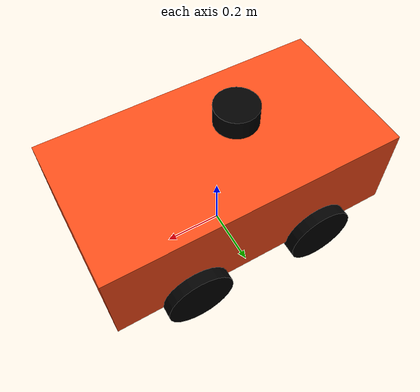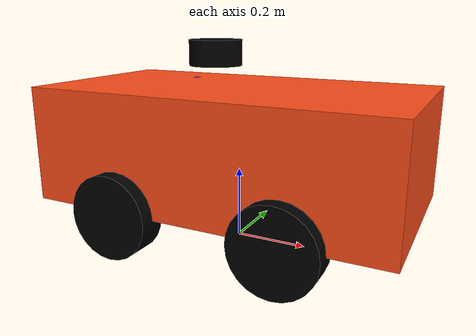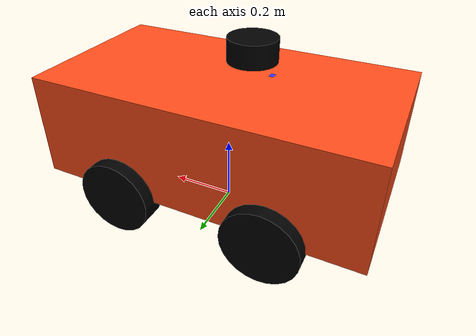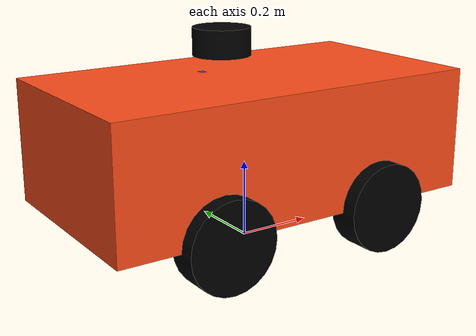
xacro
<?xml version="1.0"?>
<!-- 4 Wheel Robot with front steering and rear drive -->
<robot xmlns:xacro="http://www.ros.org/wiki/xacro" name="carlikebot_robot">
  <xacro:arg name="prefix" default="" />

  <xacro:include filename="car.urdf.xacro" />
  <xacro:include filename="car_ros2_control.xacro" />

  <xacro:include filename="lidar.urdf.xacro" />
  <xacro:include filename="imu.urdf.xacro" />

  <xacro:carlikebot prefix="$(arg prefix)" />

  <xacro:carlikebot_ros2_control name="CarlikeBot" prefix="$(arg prefix)" />

</robot>

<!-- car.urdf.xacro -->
<robot xmlns:xacro="http://www.ros.org/wiki/xacro">

    <xacro:macro name="carlikebot" params="prefix">

        <!-- Constants for robot dimensions -->
        <xacro:property name="PI" value="3.1415926535897931" />
        <xacro:property name="base_mass" value="8.0" /> <!-- arbitrary value for base mass -->
        <xacro:property name="base_length" value="1.0" />
        <xacro:property name="base_width" value="0.53" />
        <xacro:property name="base_height" value="0.32" />
        <xacro:property name="wheel_mass" value="0.1" /> <!-- arbitrary value for wheel mass -->
        <xacro:property name="wheelbase" value="0.46" />
        <xacro:property name="wheel_len" value="0.08" />
        <xacro:property name="wheel_radius" value="0.115" />

        <material name="white">
            <color rgba="1 1 1 1" />
        </material>

        <material name="orange">
            <color rgba="1 0.3 0.1 1" />
        </material>

        <material name="blue">
            <color rgba="0.2 0.2 1 1" />
        </material>

        <material name="black">
            <color rgba="0 0 0 1" />
        </material>

        <material name="red">
            <color rgba="1 0 0 1" />
        </material>

        <material name="invisible">
            <color rgba="0.0 0.0 0.0 0.0" />
        </material>

        <!-- Base Link -->
        <link name="base_link">
        </link>
        <inertial>
            <mass value="0.01" />
            <inertia ixx="1.0" ixy="0.0" ixz="0.0" iyy="1.0" iyz="0.0" izz="1.0" />
        </inertial>

        <joint name="base_joint" type="fixed">
            <parent link="base_link" />
            <child link="base_footprint" />
            <origin xyz="0 0 -0.1" />
        </joint>

        <link name="base_footprint">
        </link>
        <inertial>
            <mass value="0.01" />
            <inertia ixx="1.0" ixy="0.0" ixz="0.0" iyy="1.0" iyz="0.0" izz="1.0" />
        </inertial>

        <!-- Chassis -->

        <link name="${prefix}chassis_link">
            <collision>
                <origin xyz="0 0 0" rpy="0 0 0" />
                <geometry>
                    <box size="${base_length} ${base_width} ${base_height}" />
                </geometry>
            </collision>

            <visual>
                <origin xyz="0 0 0" rpy="0 0 0" />
                <geometry>
                    <box size="${base_length} ${base_width} ${base_height}" />
                </geometry>
                <material name="orange" />
            </visual>

            <inertial>
                <origin xyz="0 0 0" rpy="0 0 0" />
                <mass value="${base_mass}" />
                <inertia
                    ixx="0.000270" ixy="0.0" ixz="0.0"
                    iyy="0.000270" iyz="0.0"
                    izz="0.000426" />
            </inertial>
        </link>

        <joint name="${prefix}chassis_joint" type="fixed">
            <parent link="${prefix}base_link" />
            <child link="${prefix}chassis_link" />
            <origin xyz="0 0 ${base_height/2 + wheel_radius}" rpy="0 0 0" />
            <axis xyz="0 0 1" />
            <dynamics damping="0.2" />
        </joint>

        <!-- rear wheels -->

        <!-- virtual rear wheel -->

        <link name="${prefix}virtual_rear_wheel">
            <visual>
                <origin xyz="0 0 0" rpy="${PI/2} 0 ${PI/2}" />
                <geometry>
                    <cylinder length="0.01" radius="${wheel_radius}" />
                </geometry>
                <material name="blue" />
            </visual>
        </link>

        <joint name="${prefix}virtual_rear_wheel_joint" type="continuous">
            <parent link="${prefix}chassis_link" />
            <child link="${prefix}virtual_rear_wheel" />
            <origin xyz="-${wheelbase/2} 0 -${base_height/2}" rpy="0 0 ${PI/2}" />
            <axis xyz="1 0 0" />
            <limit effort="100.0" velocity="100.0" />
        </joint>

        <!-- rear right wheel -->

        <link name="${prefix}rear_right_wheel">
            <collision>
                <origin xyz="0 0 0" rpy="${PI/2} 0 ${PI/2}" />
                <geometry>
                    <cylinder length="${wheel_len}" radius="${wheel_radius}" />
                </geometry>
            </collision>

            <visual>
                <origin xyz="0 0 0" rpy="${PI/2} 0 ${PI/2}" />
                <geometry>
                    <cylinder length="${wheel_len}" radius="${wheel_radius}" />
                </geometry>
                <material name="black" />
            </visual>

            <inertial>
                <origin xyz="0 0 0" rpy="${PI/2} 0 ${PI/2}" />
                <mass value="${wheel_mass}" />
                <inertia
                    ixx="0.000270" ixy="0.0" ixz="0.0"
                    iyy="0.000270" iyz="0.0"
                    izz="0.000426" />
            </inertial>

        </link>

        <joint name="${prefix}rear_right_wheel_joint" type="continuous">
            <parent link="${prefix}chassis_link" />
            <child link="${prefix}rear_right_wheel" />
            <origin xyz="-${wheelbase/2} ${base_width/2} -${base_height/2}" rpy="0 0 ${PI/2}" />
            <axis xyz="1 0 0" />
            <limit effort="100.0" velocity="100.0" />
            <mimic joint="${prefix}virtual_rear_wheel_joint" multiplier="1.0" offset="0.0" />
        </joint>

        <!-- rear left wheel -->
        <link name="${prefix}rear_left_wheel">
            <collision>
                <origin xyz="0 0 0" rpy="${PI/2} 0 ${PI/2}" />
                <geometry>
                    <cylinder length="${wheel_len}" radius="${wheel_radius}" />
                </geometry>
            </collision>

            <visual>
                <origin xyz="0 0 0" rpy="${PI/2} 0 ${PI/2}" />
                <geometry>
                    <cylinder length="${wheel_len}" radius="${wheel_radius}" />
                </geometry>
                <material name="black" />
            </visual>

            <inertial>
                <origin xyz="0 0 0" rpy="${PI/2} 0 ${PI/2}" />
                <mass value="${wheel_mass}" />
                <inertia
                    ixx="0.000270" ixy="0.0" ixz="0.0"
                    iyy="0.000270" iyz="0.0"
                    izz="0.000426" />
            </inertial>

        </link>

        <joint name="${prefix}rear_left_wheel_joint" type="continuous">
            <parent link="${prefix}chassis_link" />
            <child link="${prefix}rear_left_wheel" />
            <origin xyz="-${wheelbase/2} -${base_width/2} -${base_height/2}" rpy="0 0 ${PI/2}" />
            <axis xyz="1 0 0" />
            <limit effort="100.0" velocity="100.0" />
            <mimic joint="${prefix}virtual_rear_wheel_joint" multiplier="1.0" offset="0.0" />
        </joint>

        <!-- front wheels -->

        <!-- virtual front wheel -->

        <link name="${prefix}virtual_front_wheel">
            <visual>
                <origin xyz="0 0 0" rpy="${PI/2} 0 ${PI/2}" />
                <geometry>
                    <cylinder length="0.01" radius="${wheel_radius}" />
                </geometry>
                <material name="blue" />
            </visual>
        </link>

        <joint name="${prefix}virtual_front_wheel_joint" type="revolute">
            <parent link="${prefix}chassis_link" />
            <child link="${prefix}virtual_front_wheel" />
            <origin xyz="${wheelbase/2} 0 -${base_height/2}" rpy="0 0 ${PI/2}" />
            <axis xyz="0 0 1" />
            <limit lower="-0.3488" upper="0.3488" effort="100.0" velocity="0.0" />
        </joint>

        <!-- front right wheel -->

        <link name="${prefix}front_right_wheel">

            <collision>
                <origin xyz="0 0 0" rpy="${PI/2} 0 ${PI/2}" />
                <geometry>
                    <cylinder length="${wheel_len}" radius="${wheel_radius}" />
                </geometry>
            </collision>

            <visual>
                <origin xyz="0 0 0" rpy="${PI/2} 0 ${PI/2}" />
                <geometry>
                    <cylinder length="${wheel_len}" radius="${wheel_radius}" />
                </geometry>
                <material name="black" />
            </visual>

            <inertial>
                <origin xyz="0 0 0" rpy="${PI/2} 0 ${PI/2}" />
                <mass value="${wheel_mass}" />
                <inertia
                    ixx="0.000270" ixy="0.0" ixz="0.0"
                    iyy="0.000270" iyz="0.0"
                    izz="0.000426" />
            </inertial>
        </link>

        <joint name="${prefix}front_right_wheel_joint" type="revolute">
            <parent link="${prefix}chassis_link" />
            <child link="${prefix}front_right_wheel" />
            <origin xyz="${wheelbase/2} ${base_width/2} -${base_height/2}" rpy="0 0 ${PI/2}" />
            <axis xyz="0 0 1" />
            <limit lower="-0.3488" upper="0.3488" effort="100.0" velocity="0.0" />
            <mimic joint="${prefix}virtual_front_wheel_joint" multiplier="1.0" offset="0.0" />
        </joint>

        <!-- front left steering -->

        <link name="${prefix}front_left_wheel">
            <collision>
                <origin xyz="0 0 0" rpy="${PI/2} 0 ${PI/2}" />
                <geometry>
                    <cylinder length="${wheel_len}" radius="${wheel_radius}" />
                </geometry>
            </collision>

            <visual>
                <origin xyz="0 0 0" rpy="${PI/2} 0 ${PI/2}" />
                <geometry>
                    <cylinder length="${wheel_len}" radius="${wheel_radius}" />
                </geometry>
                <material name="black" />
            </visual>

            <inertial>
                <origin xyz="0 0 0" rpy="${PI/2} 0 ${PI/2}" />
                <mass value="${wheel_mass}" />
                <inertia
                    ixx="0.000270" ixy="0.0" ixz="0.0"
                    iyy="0.000270" iyz="0.0"
                    izz="0.000426" />
            </inertial>

        </link>

        <joint name="${prefix}front_left_wheel_joint" type="revolute">
            <parent link="${prefix}chassis_link" />
            <child link="${prefix}front_left_wheel" />
            <origin xyz="${wheelbase/2} -${base_width/2} -${base_height/2}" rpy="0 0 ${PI/2}" />
            <axis xyz="0 0 1" />
            <limit lower="-0.3488" upper="0.3488" effort="100.0" velocity="0.0" />
            <mimic joint="${prefix}virtual_front_wheel_joint" multiplier="1.0" offset="0.0" />
        </joint>

    </xacro:macro>

</robot>

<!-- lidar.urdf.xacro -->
<robot xmlns:xacro="http://www.ros.org/wiki/xacro">

    <xacro:macro name="inertial_cylinder" params="mass length radius *origin">
        <inertial>
            <xacro:insert_block name="origin" />
            <mass value="${mass}" />
            <inertia ixx="${(1/12) * mass * (3*radius*radius + length*length)}" ixy="0.0" ixz="0.0"
                iyy="${(1/12) * mass * (3*radius*radius + length*length)}" iyz="0.0"
                izz="${(1/2) * mass * (radius*radius)}" />
        </inertial>
    </xacro:macro>

    <link name="lidar_link">
        <visual>
            <geometry>
                <cylinder radius="0.073" length="0.07" />
            </geometry>
            <material name="black" />
        </visual>
        <collision>
            <geometry>
                <cylinder radius="0.073" length="0.07" />
            </geometry>
        </collision>
        <xacro:inertial_cylinder mass="0.1" length="0.04" radius="0.05">
            <origin xyz="0 0 0" rpy="0 0 0" />
        </xacro:inertial_cylinder>
    </link>

    <joint name="lidar_joint" type="fixed">
        <parent link="chassis_link" />
        <child link="lidar_link" />
        <origin xyz="-0.07 -0.005 0.25" rpy="0 0 ${pi/2}" />
    </joint>
</robot>

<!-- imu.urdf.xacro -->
<robot xmlns:xacro="http://www.ros.org/wiki/xacro">

    <xacro:macro name="inertial_cylinder" params="mass length radius *origin">
        <inertial>
            <xacro:insert_block name="origin" />
            <mass value="${mass}" />
            <inertia ixx="${(1/12) * mass * (3*radius*radius + length*length)}" ixy="0.0" ixz="0.0"
                iyy="${(1/12) * mass * (3*radius*radius + length*length)}" iyz="0.0"
                izz="${(1/2) * mass * (radius*radius)}" />
        </inertial>
    </xacro:macro>

    <xacro:macro name="inertial_box" params="mass x y z *origin">
        <inertial>
            <xacro:insert_block name="origin" />
            <mass value="${mass}" />
            <inertia ixx="${(1/12) * mass * (y*y+z*z)}" ixy="0.0" ixz="0.0"
                iyy="${(1/12) * mass * (x*x+z*z)}" iyz="0.0"
                izz="${(1/12) * mass * (x*x+y*y)}" />
        </inertial>
    </xacro:macro>

    <link name="imu_frame">
        <visual>
            <geometry>
                <box size="0.015 0.02 0.0001"></box>
            </geometry>
            <material name="blue" />
        </visual>
        <collision>
            <geometry>
                <box size="0.015 0.02 0.0001"></box>
            </geometry>
        </collision>
        <xacro:inertial_box mass="0.001" x="0.015" y="0.02" z="0.0001">
        <origin xyz="0 0 0" rpy="0 0 0" />
        </xacro:inertial_box>
    </link>

    <joint name="imu_joint" type="fixed">
        <parent link="chassis_link" />
        <child link="imu_frame" />
        <origin xyz="-0.13 -0.01 0.18" rpy="0 0 0" />
    </joint>
</robot>
